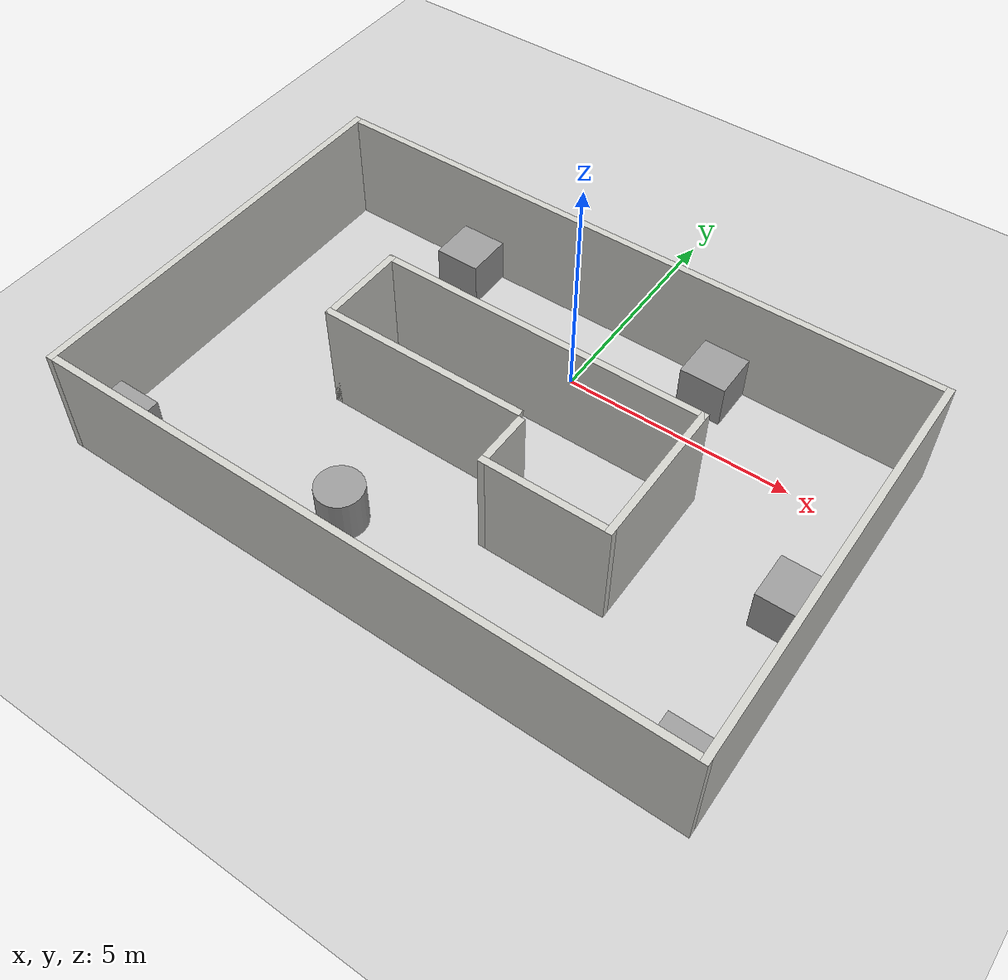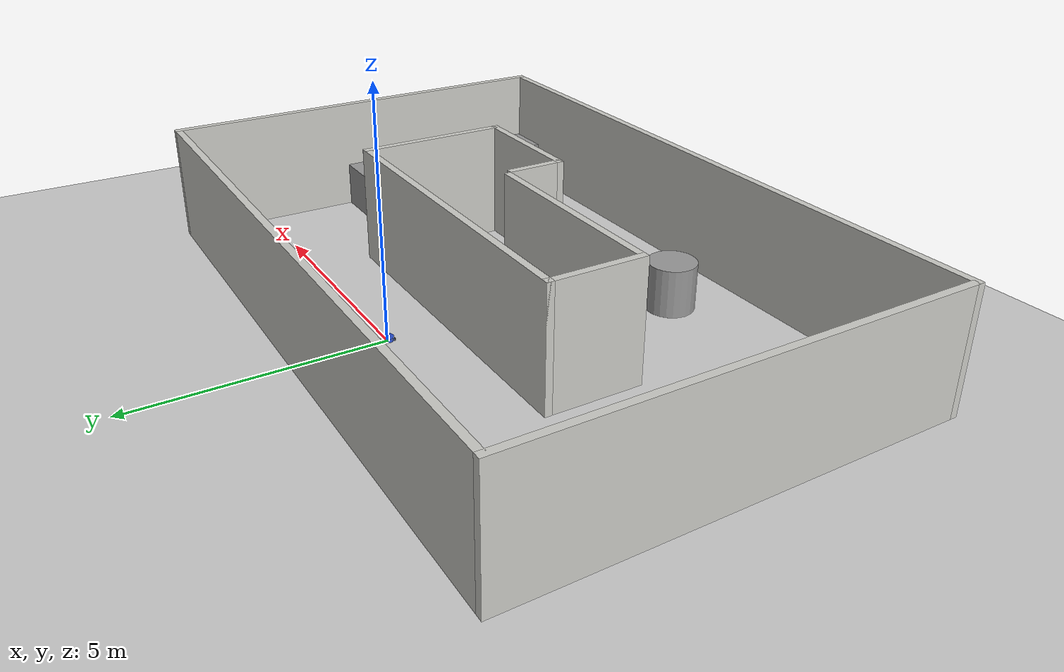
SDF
<sdf version="1.6">
 <world name="default">
  <light name="sun" type="directional">
   <pose>0 0 10 0 -0 0</pose>
   <diffuse>0.8 0.8 0.8 1</diffuse>
   <specular>0.2 0.2 0.2 1</specular>
   <attenuation>
    <range>1000</range>
    <constant>0.9</constant>
    <linear>0.01</linear>
    <quadratic>0.001</quadratic>
   </attenuation>
   <direction>-0.5 0.1 -0.9</direction>
  </light>
  <model name="ground_plane">
   <static>1</static>
   <link name="link">
    <collision name="collision">
     <geometry><plane><normal>0 0 1</normal><size>100 100</size></plane></geometry>
     <surface><friction><ode><mu>100</mu><mu2>50</mu2></ode></friction></surface>
    </collision>
    <visual name="visual">
     <cast_shadows>0</cast_shadows>
     <geometry><plane><normal>0 0 1</normal><size>100 100</size></plane></geometry>
     <material>
      <script><uri>file://media/materials/scripts/gazebo.material</uri><name>Gazebo/Grey</name></script>
     </material>
    </visual>
    <velocity_decay><linear>0</linear><angular>0</angular></velocity_decay>
   </link>
  </model>
  <physics name="default_physics" default="0" type="ode">
   <max_step_size>0.001</max_step_size>
   <real_time_factor>1</real_time_factor>
   <real_time_update_rate>1000</real_time_update_rate>
  </physics>
  <scene><ambient>0.4 0.4 0.4 1</ambient><background>0.7 0.7 0.7 1</background><shadows>1</shadows></scene>
  <spherical_coordinates>
   <surface_model>EARTH_WGS84</surface_model>
   <latitude_deg>0</latitude_deg>
   <longitude_deg>0</longitude_deg>
   <elevation>0</elevation>
   <heading_deg>0</heading_deg>
  </spherical_coordinates>
  <gravity>0 0 -9.8</gravity>
  <magnetic_field>6e-06 2.3e-05 -4.2e-05</magnetic_field>
  <atmosphere type="adiabatic"/>
  <model name="room_0">
   <pose>-0.064136 -2.60385 0 0 -0 0</pose>
   <link name="Wall_0">
    <collision name="Wall_0_Collision">
     <geometry><box><size>13.75 0.15 2.5</size></box></geometry>
     <pose>0 0 1.25 0 -0 0</pose>
    </collision>
    <visual name="Wall_0_Visual">
     <pose>0 0 1.25 0 -0 0</pose>
     <geometry><box><size>13.75 0.15 2.5</size></box></geometry>
     <material>
      <script><uri>file://media/materials/scripts/gazebo.material</uri><name>Gazebo/CeilingTiled</name></script>
      <ambient>1 1 1 1</ambient>
     </material>
    </visual>
    <pose>-0.027328 4.425 0 0 -0 0</pose>
   </link>
   <link name="Wall_12">
    <collision name="Wall_12_Collision">
     <geometry><box><size>2 0.15 2.5</size></box></geometry>
     <pose>0 0 1.25 0 -0 0</pose>
    </collision>
    <visual name="Wall_12_Visual">
     <pose>0 0 1.25 0 -0 0</pose>
     <geometry><box><size>2 0.15 2.5</size></box></geometry>
     <material>
      <script><uri>file://media/materials/scripts/gazebo.material</uri><name>Gazebo/CeilingTiled</name></script>
      <ambient>1 1 1 1</ambient>
     </material>
    </visual>
    <pose>-3.49908 0.404259 0 0 0 -1.5708</pose>
   </link>
   <link name="Wall_13">
    <collision name="Wall_13_Collision">
     <geometry><box><size>4.5 0.15 2.5</size></box></geometry>
     <pose>0 0 1.25 0 -0 0</pose>
    </collision>
    <visual name="Wall_13_Visual">
     <pose>0 0 1.25 0 -0 0</pose>
     <geometry><box><size>4.5 0.15 2.5</size></box></geometry>
     <material>
      <script><uri>file://media/materials/scripts/gazebo.material</uri><name>Gazebo/CeilingTiled</name></script>
      <ambient>1 1 1 1</ambient>
     </material>
    </visual>
    <pose>-1.32408 -0.520741 0 0 -0 0</pose>
   </link>
   <link name="Wall_2">
    <collision name="Wall_2_Collision">
     <geometry><box><size>9 0.15 2.5</size></box></geometry>
     <pose>0 0 1.25 0 -0 0</pose>
    </collision>
    <visual name="Wall_2_Visual">
     <pose>0 0 1.25 0 -0 0</pose>
     <geometry><box><size>9 0.15 2.5</size></box></geometry>
     <material>
      <script><uri>file://media/materials/scripts/gazebo.material</uri><name>Gazebo/CeilingTiled</name></script>
      <ambient>1 1 1 1</ambient>
     </material>
    </visual>
    <pose>6.925 0 0 0 0 -1.5708</pose>
   </link>
   <link name="Wall_3">
    <collision name="Wall_3_Collision">
     <geometry><box><size>14 0.15 2.5</size></box></geometry>
     <pose>0 0 1.25 0 -0 0</pose>
    </collision>
    <visual name="Wall_3_Visual">
     <pose>0 0 1.25 0 -0 0</pose>
     <geometry><box><size>14 0.15 2.5</size></box></geometry>
     <material>
      <script><uri>file://media/materials/scripts/gazebo.material</uri><name>Gazebo/CeilingTiled</name></script>
      <ambient>1 1 1 1</ambient>
     </material>
    </visual>
    <pose>0 -4.425 0 0 -0 3.14159</pose>
   </link>
   <link name="Wall_4">
    <collision name="Wall_4_Collision">
     <geometry><box><size>9 0.15 2.5</size></box></geometry>
     <pose>0 0 1.25 0 -0 0</pose>
    </collision>
    <visual name="Wall_4_Visual">
     <pose>0 0 1.25 0 -0 0</pose>
     <geometry><box><size>9 0.15 2.5</size></box></geometry>
     <material>
      <script><uri>file://media/materials/scripts/gazebo.material</uri><name>Gazebo/CeilingTiled</name></script>
      <ambient>1 1 1 1</ambient>
     </material>
    </visual>
    <pose>-6.925 0 0 0 -0 1.5708</pose>
   </link>
   <link name="Wall_6">
    <collision name="Wall_6_Collision">
     <geometry><box><size>7.25 0.15 2.5</size></box></geometry>
     <pose>0 0 1.25 0 -0 0</pose>
    </collision>
    <visual name="Wall_6_Visual">
     <pose>0 0 1.25 0 -0 0</pose>
     <geometry><box><size>7.25 0.15 2.5</size></box></geometry>
     <material>
      <script><uri>file://media/materials/scripts/gazebo.material</uri><name>Gazebo/CeilingTiled</name></script>
      <ambient>1 1 1 1</ambient>
     </material>
    </visual>
    <pose>0.050923 1.32926 0 0 -0 0</pose>
   </link>
   <link name="Wall_7">
    <collision name="Wall_7_Collision">
     <geometry><box><size>3.25 0.15 2.5</size></box></geometry>
     <pose>0 0 1.25 0 -0 0</pose>
    </collision>
    <visual name="Wall_7_Visual">
     <pose>0 0 1.25 0 -0 0</pose>
     <geometry><box><size>3.25 0.15 2.5</size></box></geometry>
     <material>
      <script><uri>file://media/materials/scripts/gazebo.material</uri><name>Gazebo/CeilingTiled</name></script>
      <ambient>1 1 1 1</ambient>
     </material>
    </visual>
    <pose>3.60092 -0.220741 0 0 0 -1.5708</pose>
   </link>
   <link name="Wall_8">
    <collision name="Wall_8_Collision">
     <geometry><box><size>2.75 0.15 2.5</size></box></geometry>
     <pose>0 0 1.25 0 -0 0</pose>
    </collision>
    <visual name="Wall_8_Visual">
     <pose>0 0 1.25 0 -0 0</pose>
     <geometry><box><size>2.75 0.15 2.5</size></box></geometry>
     <material>
      <script><uri>file://media/materials/scripts/gazebo.material</uri><name>Gazebo/CeilingTiled</name></script>
      <ambient>1 1 1 1</ambient>
     </material>
    </visual>
    <pose>2.30092 -1.77074 0 0 -0 3.14159</pose>
   </link>
   <link name="Wall_9">
    <collision name="Wall_9_Collision">
     <geometry><box><size>1.25 0.15 2.5</size></box></geometry>
     <pose>0 0 1.25 0 -0 0</pose>
    </collision>
    <visual name="Wall_9_Visual">
     <pose>0 0 1.25 0 -0 0</pose>
     <geometry><box><size>1.25 0.15 2.5</size></box></geometry>
     <material>
      <script><uri>file://media/materials/scripts/gazebo.material</uri><name>Gazebo/CeilingTiled</name></script>
      <ambient>1 1 1 1</ambient>
     </material>
    </visual>
    <pose>1.00092 -1.22074 0 0 -0 1.5708</pose>
   </link>
   <static>1</static>
  </model>
  <model name="mrobot">
   <link name="base_footprint">
    <inertial>
     <pose>0.001597 0 0.056501 0 -0 0</pose>
     <mass>0.714</mass>
     <inertia>
      <ixx>0.0140306</ixx>
      <ixy>4.3277e-23</ixy>
      <ixz>4.80916e-05</ixz>
      <iyy>0.0141664</iyy>
      <iyz>6.37007e-22</iyz>
      <izz>0.0156664</izz>
     </inertia>
    </inertial>
    <collision name="base_footprint_fixed_joint_lump__base_link_collision">
     <pose>0 0 0.033 0 -0 0</pose>
     <geometry><cylinder><length>0.005</length><radius>0.13</radius></cylinder></geometry>
    </collision>
    <collision name="base_footprint_fixed_joint_lump__front_caster_link_collision_1">
     <pose>0.12 0 0.017 0 -0 0</pose>
     <geometry><sphere><radius>0.016</radius></sphere></geometry>
    </collision>
    <collision name="base_footprint_fixed_joint_lump__plate_1_link_collision_2">
     <pose>0 0 0.103 0 -0 0</pose>
     <geometry><cylinder><length>0.005</length><radius>0.13</radius></cylinder></geometry>
    </collision>
    <collision name="base_footprint_fixed_joint_lump__laser_link_collision_3">
     <pose>0 0 0.131 0 -0 0</pose>
     <geometry><cylinder><length>0.06</length><radius>0.05</radius></cylinder></geometry>
    </collision>
    <collision name="base_footprint_fixed_joint_lump__standoff_2in_1_link_collision_4">
     <pose>-0.09 -0.07 0.068 0 -0 0</pose>
     <geometry><box><size>0.01 0.01 0.07</size></box></geometry>
    </collision>
    <collision name="base_footprint_fixed_joint_lump__standoff_2in_2_link_collision_5">
     <pose>-0.09 0.07 0.068 0 -0 0</pose>
     <geometry><box><size>0.01 0.01 0.07</size></box></geometry>
    </collision>
    <collision name="base_footprint_fixed_joint_lump__standoff_2in_3_link_collision_6">
     <pose>0.06 -0.1 0.068 0 -0 0</pose>
     <geometry><box><size>0.01 0.01 0.07</size></box></geometry>
    </collision>
    <collision name="base_footprint_fixed_joint_lump__standoff_2in_4_link_collision_7">
     <pose>0.06 0.1 0.068 0 -0 0</pose>
     <geometry><box><size>0.01 0.01 0.07</size></box></geometry>
    </collision>
    <visual name="base_footprint_visual"><geometry><box><size>0.001 0.001 0.001</size></box></geometry></visual>
    <visual name="base_footprint_fixed_joint_lump__base_link_visual_1">
     <pose>0 0 0.033 0 -0 0</pose>
     <geometry><cylinder><length>0.005</length><radius>0.13</radius></cylinder></geometry>
     <material>
      <script><name>Gazebo/Blue</name><uri>file://media/materials/scripts/gazebo.material</uri></script>
     </material>
    </visual>
    <visual name="base_footprint_fixed_joint_lump__front_caster_link_visual_2">
     <pose>0.12 0 0.017 0 -0 0</pose>
     <geometry><sphere><radius>0.016</radius></sphere></geometry>
     <material>
      <script><name>Gazebo/Black</name><uri>file://media/materials/scripts/gazebo.material</uri></script>
     </material>
    </visual>
    <visual name="base_footprint_fixed_joint_lump__plate_1_link_visual_3">
     <pose>0 0 0.103 0 -0 0</pose>
     <geometry><cylinder><length>0.005</length><radius>0.13</radius></cylinder></geometry>
     <material>
      <script><name>Gazebo/Blue</name><uri>file://media/materials/scripts/gazebo.material</uri></script>
     </material>
    </visual>
    <visual name="base_footprint_fixed_joint_lump__laser_link_visual_4">
     <pose>0 0 0.131 0 -0 0</pose>
     <geometry><cylinder><length>0.05</length><radius>0.05</radius></cylinder></geometry>
     <material>
      <script><name>Gazebo/Black</name><uri>file://media/materials/scripts/gazebo.material</uri></script>
     </material>
    </visual>
    <visual name="base_footprint_fixed_joint_lump__standoff_2in_1_link_visual_5">
     <pose>-0.09 -0.07 0.068 0 -0 0</pose>
     <geometry><box><size>0.01 0.01 0.07</size></box></geometry>
    </visual>
    <visual name="base_footprint_fixed_joint_lump__standoff_2in_2_link_visual_6">
     <pose>-0.09 0.07 0.068 0 -0 0</pose>
     <geometry><box><size>0.01 0.01 0.07</size></box></geometry>
    </visual>
    <visual name="base_footprint_fixed_joint_lump__standoff_2in_3_link_visual_7">
     <pose>0.06 -0.1 0.068 0 -0 0</pose>
     <geometry><box><size>0.01 0.01 0.07</size></box></geometry>
    </visual>
    <visual name="base_footprint_fixed_joint_lump__standoff_2in_4_link_visual_8">
     <pose>0.06 0.1 0.068 0 -0 0</pose>
     <geometry><box><size>0.01 0.01 0.07</size></box></geometry>
    </visual>
    <sensor name="rplidar" type="ray">
     <visualize>0</visualize>
     <update_rate>5.5</update_rate>
     <ray>
      <scan>
       <horizontal>
        <samples>360</samples>
        <resolution>1</resolution>
        <min_angle>-3</min_angle>
        <max_angle>3</max_angle>
       </horizontal>
       <vertical><samples>1</samples><min_angle>0</min_angle><max_angle>0</max_angle></vertical>
      </scan>
      <range><min>0.1</min><max>6</max><resolution>0.01</resolution></range>
      <noise><type>gaussian</type><mean>0</mean><stddev>0.01</stddev></noise>
     </ray>
     <plugin name="gazebo_rplidar" filename="libgazebo_ros_laser.so">
      <topicName>/scan</topicName>
      <frameName>laser_link</frameName>
      <robotNamespace>/</robotNamespace>
     </plugin>
     <pose>0 0 0.131 0 -0 0</pose>
    </sensor>
   </link>
   <link name="wheel_left_link">
    <pose>-0.05 -0.13 0.033 0 -0 0</pose>
    <inertial>
     <mass>0.1</mass>
     <inertia>
      <ixx>2.96333e-05</ixx>
      <ixy>0</ixy>
      <ixz>0</ixz>
      <iyy>2.96333e-05</iyy>
      <iyz>0</iyz>
      <izz>5.445e-05</izz>
     </inertia>
    </inertial>
    <collision name="wheel_left_link_collision">
     <pose>0 0 0 1.5708 -0 0</pose>
     <geometry><cylinder><length>0.017</length><radius>0.033</radius></cylinder></geometry>
    </collision>
    <visual name="wheel_left_link_visual">
     <pose>0 0 0 1.5708 -0 0</pose>
     <geometry><cylinder><length>0.017</length><radius>0.033</radius></cylinder></geometry>
     <material>
      <script><name>Gazebo/Black</name><uri>file://media/materials/scripts/gazebo.material</uri></script>
     </material>
    </visual>
   </link>
   <joint name="base_to_wheel_left_joint" type="revolute">
    <child>wheel_left_link</child>
    <parent>base_footprint</parent>
    <axis>
     <xyz>0 1 0</xyz>
     <limit><lower>-1e+16</lower><upper>1e+16</upper></limit>
     <dynamics><spring_reference>0</spring_reference><spring_stiffness>0</spring_stiffness></dynamics>
     <use_parent_model_frame>1</use_parent_model_frame>
    </axis>
   </joint>
   <link name="wheel_right_link">
    <pose>-0.05 0.13 0.033 0 -0 0</pose>
    <inertial>
     <mass>0.1</mass>
     <inertia>
      <ixx>2.96333e-05</ixx>
      <ixy>0</ixy>
      <ixz>0</ixz>
      <iyy>2.96333e-05</iyy>
      <iyz>0</iyz>
      <izz>5.445e-05</izz>
     </inertia>
    </inertial>
    <collision name="wheel_right_link_collision">
     <pose>0 0 0 1.5708 -0 0</pose>
     <geometry><cylinder><length>0.017</length><radius>0.033</radius></cylinder></geometry>
    </collision>
    <visual name="wheel_right_link_visual">
     <pose>0 0 0 1.5708 -0 0</pose>
     <geometry><cylinder><length>0.017</length><radius>0.033</radius></cylinder></geometry>
     <material>
      <script><name>Gazebo/Black</name><uri>file://media/materials/scripts/gazebo.material</uri></script>
     </material>
    </visual>
   </link>
   <joint name="base_to_wheel_right_joint" type="revolute">
    <child>wheel_right_link</child>
    <parent>base_footprint</parent>
    <axis>
     <xyz>0 1 0</xyz>
     <limit><lower>-1e+16</lower><upper>1e+16</upper></limit>
     <dynamics><spring_reference>0</spring_reference><spring_stiffness>0</spring_stiffness></dynamics>
     <use_parent_model_frame>1</use_parent_model_frame>
    </axis>
   </joint>
   <static>0</static>
   <plugin name="differential_drive_controller" filename="libgazebo_ros_diff_drive.so">
    <rosDebugLevel>Debug</rosDebugLevel>
    <publishWheelTF>true</publishWheelTF>
    <robotNamespace>/</robotNamespace>
    <publishTf>1</publishTf>
    <publishWheelJointState>true</publishWheelJointState>
    <alwaysOn>true</alwaysOn>
    <updateRate>100.0</updateRate>
    <legacyMode>true</legacyMode>
    <leftJoint>base_to_wheel_left_joint</leftJoint>
    <rightJoint>base_to_wheel_right_joint</rightJoint>
    <wheelSeparation>0.26</wheelSeparation>
    <wheelDiameter>0.066</wheelDiameter>
    <broadcastTF>1</broadcastTF>
    <wheelTorque>30</wheelTorque>
    <wheelAcceleration>1.8</wheelAcceleration>
    <commandTopic>cmd_vel</commandTopic>
    <odometryFrame>odom</odometryFrame>
    <odometryTopic>odom</odometryTopic>
    <robotBaseFrame>base_footprint</robotBaseFrame>
   </plugin>
   <pose>-0.004297 -0.000318 -0.000294 0 0.005884 -0.000505</pose>
  </model>
  <model name="unit_box_0">
   <pose>-3.48644 1.24615 0.499995 -1e-05 0 0</pose>
   <link name="link">
    <inertial>
     <mass>1</mass>
     <inertia>
      <ixx>0.166667</ixx>
      <ixy>0</ixy>
      <ixz>0</ixz>
      <iyy>0.166667</iyy>
      <iyz>0</iyz>
      <izz>0.166667</izz>
     </inertia>
    </inertial>
    <collision name="collision"><geometry><box><size>1 1 1</size></box></geometry></collision>
    <visual name="visual">
     <geometry><box><size>1 1 1</size></box></geometry>
     <material>
      <script><name>Gazebo/Grey</name><uri>file://media/materials/scripts/gazebo.material</uri></script>
     </material>
    </visual>
   </link>
  </model>
  <model name="unit_box_1">
   <pose>2.55015 1.24615 0.499995 -1e-05 0 0</pose>
   <link name="link">
    <inertial>
     <mass>1</mass>
     <inertia>
      <ixx>0.166667</ixx>
      <ixy>0</ixy>
      <ixz>0</ixz>
      <iyy>0.166667</iyy>
      <iyz>0</iyz>
      <izz>0.166667</izz>
     </inertia>
    </inertial>
    <collision name="collision"><geometry><box><size>1 1 1</size></box></geometry></collision>
    <visual name="visual">
     <geometry><box><size>1 1 1</size></box></geometry>
     <material>
      <script><name>Gazebo/Grey</name><uri>file://media/materials/scripts/gazebo.material</uri></script>
     </material>
    </visual>
   </link>
  </model>
  <model name="unit_box_2">
   <pose>-6.26304 -6.42382 0.499995 1e-05 -0 0</pose>
   <link name="link">
    <inertial>
     <mass>1</mass>
     <inertia>
      <ixx>0.166667</ixx>
      <ixy>0</ixy>
      <ixz>0</ixz>
      <iyy>0.166667</iyy>
      <iyz>0</iyz>
      <izz>0.166667</izz>
     </inertia>
    </inertial>
    <collision name="collision"><geometry><box><size>1 1 1</size></box></geometry></collision>
    <visual name="visual">
     <geometry><box><size>1 1 1</size></box></geometry>
     <material>
      <script><name>Gazebo/Grey</name><uri>file://media/materials/scripts/gazebo.material</uri></script>
     </material>
    </visual>
   </link>
  </model>
  <model name="unit_box_3">
   <pose>6.20664 -6.37529 0.499995 0 -1e-05 0</pose>
   <link name="link">
    <inertial>
     <mass>1</mass>
     <inertia>
      <ixx>0.166667</ixx>
      <ixy>0</ixy>
      <ixz>0</ixz>
      <iyy>0.166667</iyy>
      <iyz>0</iyz>
      <izz>0.166667</izz>
     </inertia>
    </inertial>
    <collision name="collision"><geometry><box><size>1 1 1</size></box></geometry></collision>
    <visual name="visual">
     <geometry><box><size>1 1 1</size></box></geometry>
     <material>
      <script><name>Gazebo/Grey</name><uri>file://media/materials/scripts/gazebo.material</uri></script>
     </material>
    </visual>
   </link>
  </model>
  <model name="unit_box_4_0">
   <pose>6.27127 -2.58507 0.499995 -1e-05 0 0</pose>
   <link name="link">
    <inertial>
     <mass>1</mass>
     <inertia>
      <ixx>0.166667</ixx>
      <ixy>0</ixy>
      <ixz>0</ixz>
      <iyy>0.166667</iyy>
      <iyz>0</iyz>
      <izz>0.166667</izz>
     </inertia>
    </inertial>
    <collision name="collision"><geometry><box><size>1 1 1</size></box></geometry></collision>
    <visual name="visual">
     <geometry><box><size>1 1 1</size></box></geometry>
     <material>
      <script><name>Gazebo/Grey</name><uri>file://media/materials/scripts/gazebo.material</uri></script>
     </material>
    </visual>
   </link>
  </model>
  <model name="unit_cylinder_0">
   <pose>-1.56611 -5.45378 0.499997 3e-06 4e-06 -0</pose>
   <link name="link">
    <inertial>
     <mass>1</mass>
     <inertia><ixx>0.145833</ixx><ixy>0</ixy><ixz>0</ixz><iyy>0.145833</iyy><iyz>0</iyz><izz>0.125</izz></inertia>
    </inertial>
    <collision name="collision">
     <geometry><cylinder><radius>0.5</radius><length>1</length></cylinder></geometry>
    </collision>
    <visual name="visual">
     <geometry><cylinder><radius>0.5</radius><length>1</length></cylinder></geometry>
     <material>
      <script><name>Gazebo/Grey</name><uri>file://media/materials/scripts/gazebo.material</uri></script>
     </material>
    </visual>
   </link>
  </model>
 </world>
</sdf>
